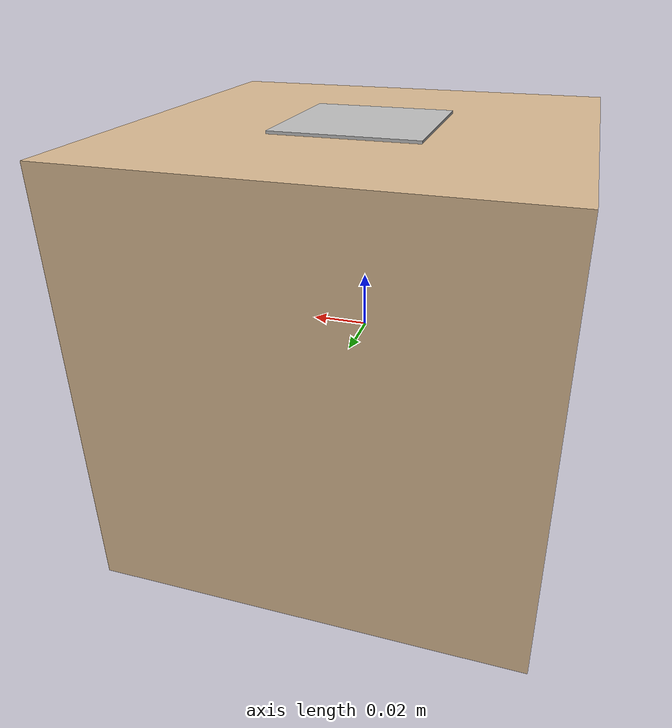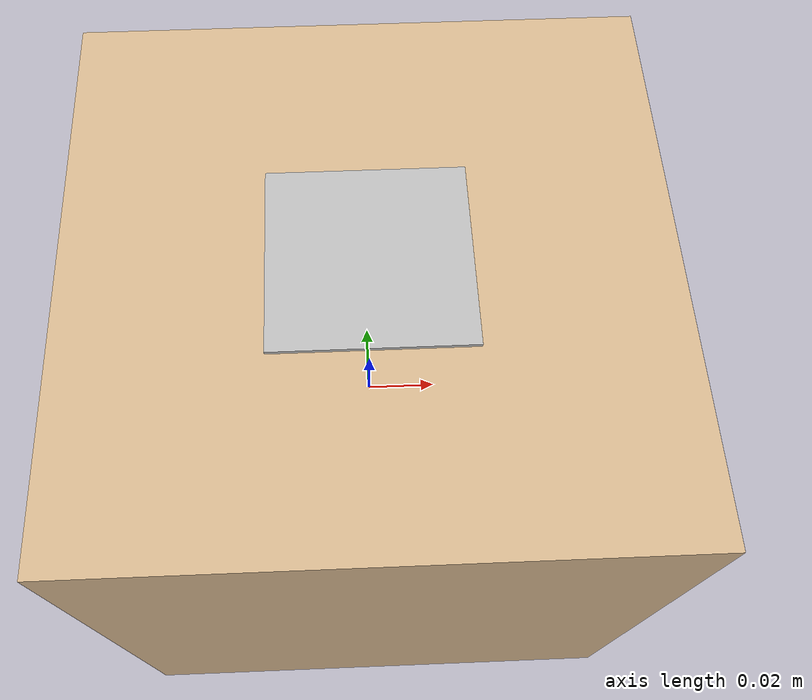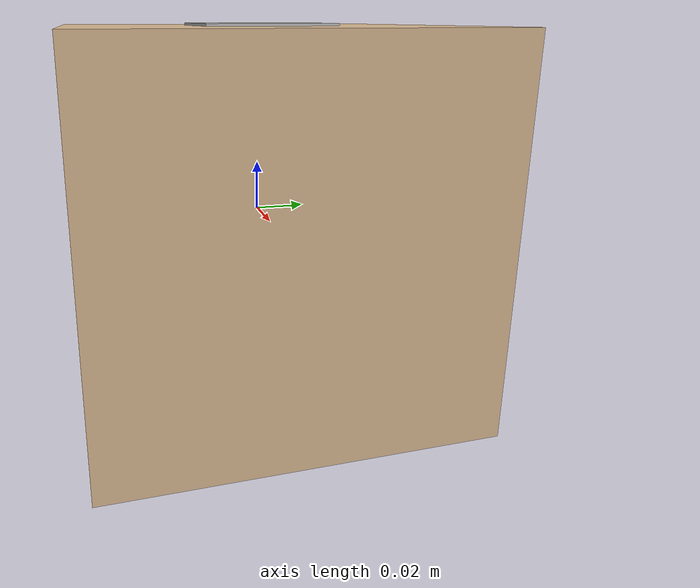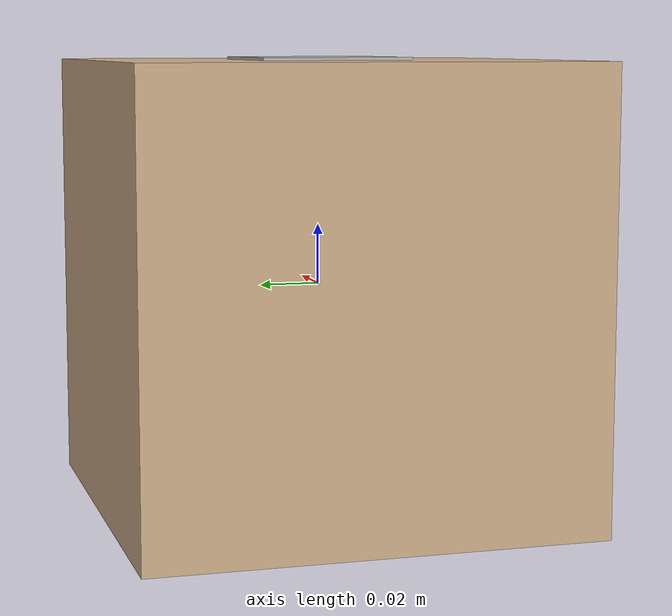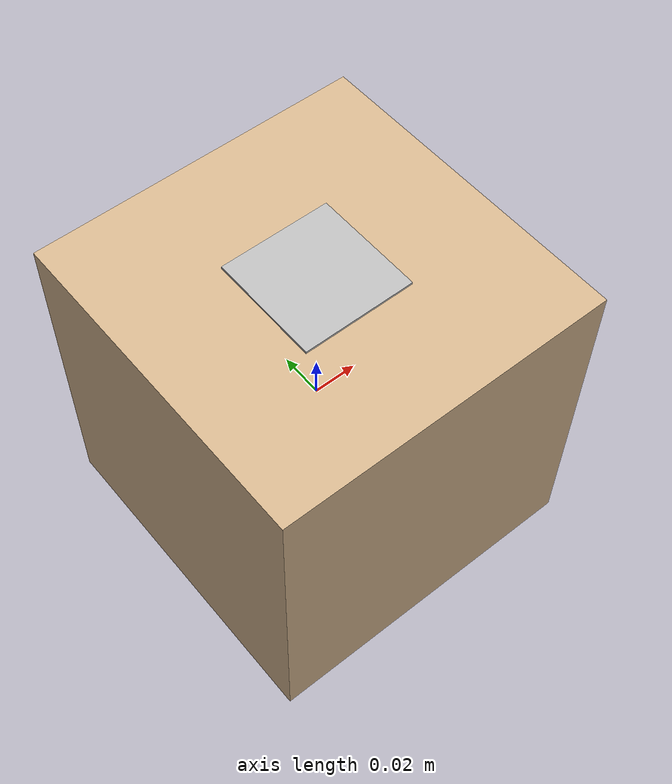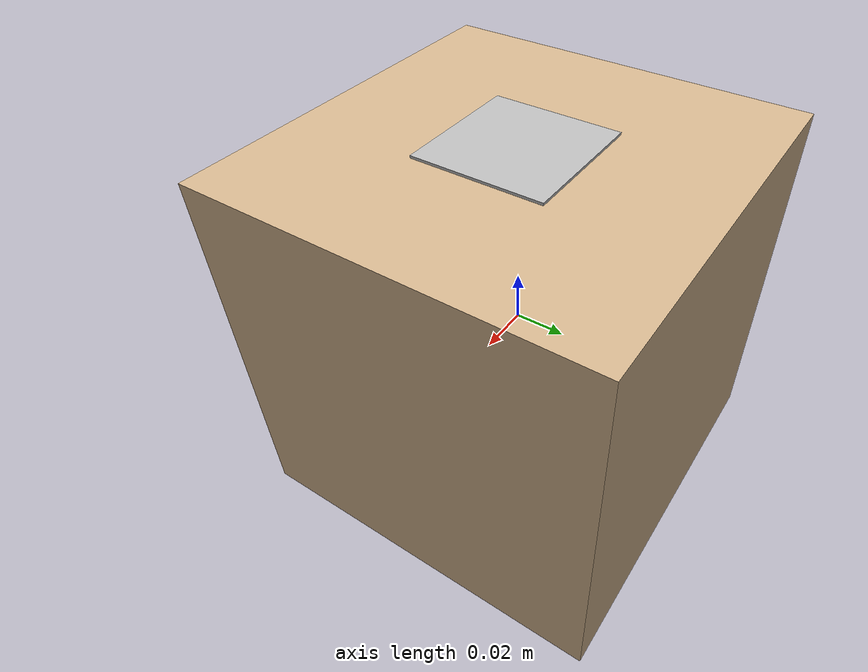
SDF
<?xml version="1.0"?>
<sdf version="1.6">
  <model name="aruco_box_26">
    <static>false</static>
    <link name="link">
      <inertial>
        <mass>0.3</mass>
        <!-- solid cube, side 0.15m: ixx=iyy=izz = (1/6)*m*s^2 -->
        <inertia>
          <ixx>0.001125</ixx>
          <ixy>0</ixy>
          <ixz>0</ixz>
          <iyy>0.001125</iyy>
          <iyz>0</iyz>
          <izz>0.001125</izz>
        </inertia>
      </inertial>

      <collision name="collision">
        <geometry>
          <box>
            <size>0.15 0.15 0.15</size>
          </box>
        </geometry>
        <surface>
          <friction>
            <ode>
              <mu>1.2</mu>
              <mu2>1.2</mu2>
            </ode>
          </friction>
        </surface>
      </collision>

      <visual name="visual_box">
        <geometry>
          <box>
            <size>0.15 0.15 0.15</size>
          </box>
        </geometry>
        <material>
          <ambient>0.82 0.70 0.55 1</ambient>
          <diffuse>0.82 0.70 0.55 1</diffuse>
        </material>
      </visual>

      <visual name="visual_marker_26">
        <pose>0 0 0.0755 0 0 0</pose>
        <geometry>
          <box>
            <size>0.05 0.05 0.001</size>
          </box>
        </geometry>
        <material>
          <script>
            <uri>model://aruco_marker_26/materials/scripts</uri>
            <uri>model://aruco_marker_26/materials/textures</uri>
            <name>Aruco/Marker26</name>
          </script>
        </material>
      </visual>
    </link>
  </model>
</sdf>
